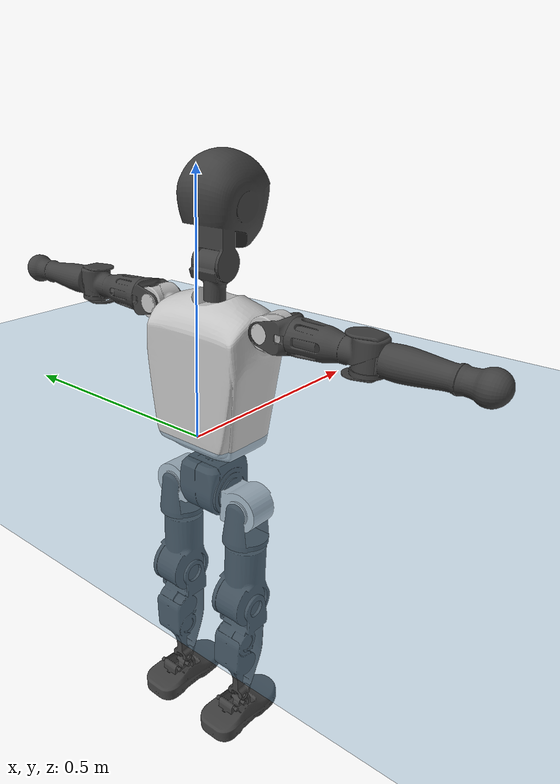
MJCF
<mujoco model="T1">
  <compiler angle="radian" assetdir="assets" balanceinertia="true" inertiafromgeom="false"/>

  <option timestep="0.005" density="1.2" viscosity="2e-05"/>

  <size nkey="1"/>

  <visual>
    <quality shadowsize="8192"/>
    <map shadowclip="0.5"/>
  </visual>

  <default>
    <default class="/">
      <joint armature="0.01" damping="0.01" frictionloss="0.1"/>
      <geom contype="0" conaffinity="0" group="1" solref="-1000 -80"/>
      <site size="0.01 0.005 0.005" group="5"/>
      <general forcelimited="true" biastype="affine" gainprm="25" biasprm="0 -25 -0.6"/>
      <default class="t1">
        <geom rgba="0.25 0.25 0.25 1"/>
        <default class="visual">
          <geom type="mesh" group="2"/>
        </default>
        <default class="collision">
          <geom group="3"/>
        </default>
        <default class="foot">
          <geom size="0.1115 0.05 0.015" type="box" condim="6" group="4" priority="1" solimp="0.015 1 0.015"/>
        </default>
        <default class="reward_collision_sphere">
          <geom group="5" rgba="1 0 0 1"/>
        </default>
      </default>
    </default>
  </default>

  <asset>
    <texture type="skybox" colorspace="auto" name="//unnamed_texture_0" builtin="gradient" rgb1="0.95 0.95 0.95" rgb2="0.95 0.95 0.95" width="100" height="600"/>
    <texture type="2d" colorspace="auto" name="texplane" builtin="checker" rgb1="0.345 0.575 0.748" rgb2="0.345 0.575 0.748" markrgb="1 1 1" width="512" height="512"/>
    <material name="MatPlane" class="/" texture="texplane" texuniform="true" texrepeat="2 2" specular="0.9"/>
    <mesh name="Trunk" class="/" file="Trunk.stl"/>
    <mesh name="H1" class="/" file="H1.stl"/>
    <mesh name="H2" class="/" file="H2.stl"/>
    <mesh name="AL1" class="/" file="AL1.stl"/>
    <mesh name="AL2" class="/" file="AL2.stl"/>
    <mesh name="AL3" class="/" file="AL3.stl"/>
    <mesh name="left_hand_link" class="/" file="left_hand_link.stl"/>
    <mesh name="AR1" class="/" file="AR1.stl"/>
    <mesh name="AR2" class="/" file="AR2.stl"/>
    <mesh name="AR3" class="/" file="AR3.stl"/>
    <mesh name="right_hand_link" class="/" file="right_hand_link.stl"/>
    <mesh name="Waist" class="/" file="Waist.stl"/>
    <mesh name="Hip_Pitch_Left" class="/" file="Hip_Pitch_Left.stl"/>
    <mesh name="Hip_Roll_Left" class="/" file="Hip_Roll_Left.stl"/>
    <mesh name="Hip_Yaw_Left" class="/" file="Hip_Yaw_Left.stl"/>
    <mesh name="Shank_Left" class="/" file="Shank_Left.stl"/>
    <mesh name="Ankle_Cross_Left" class="/" file="Ankle_Cross_Left.stl"/>
    <mesh name="left_foot_link" class="/" file="left_foot_link.stl"/>
    <mesh name="Hip_Pitch_Right" class="/" file="Hip_Pitch_Right.stl"/>
    <mesh name="Hip_Roll_Right" class="/" file="Hip_Roll_Right.stl"/>
    <mesh name="Hip_Yaw_Right" class="/" file="Hip_Yaw_Right.stl"/>
    <mesh name="Shank_Right" class="/" file="Shank_Right.stl"/>
    <mesh name="Ankle_Cross_Right" class="/" file="Ankle_Cross_Right.stl"/>
    <mesh name="right_foot_link" class="/" file="right_foot_link.stl"/>
  </asset>

  <worldbody>
    <geom name="floor" class="/" size="100 100 0.125" type="plane" group="0" material="MatPlane"/>
    <light name="toplight_shadow" class="/" pos="0 0 5" dir="0.0990148 0.0990148 -0.990148" type="directional" ambient="0.04 0.04 0.04" diffuse="0.55 0.55 0.55" specular="0.12 0.12 0.12"/>
    <light name="toplight_fill" class="/" pos="0 0 5" dir="0.0990148 0.0990148 -0.990148" type="directional" castshadow="false" ambient="0.04 0.04 0.04" diffuse="0.3 0.3 0.3" specular="0.08 0.08 0.08"/>
    <body name="trunk" childclass="t1" pos="0.000305279 -6.89025e-06 -0.000397477" quat="1 6.46686e-05 -1.37423e-05 -3.88072e-05">
      <inertial pos="0.0427362 -0.000448821 0.114601" quat="0.999938 0.00368339 -0.0104711 -0.000810187" mass="9.24919" diaginertia="0.0279938 0.0423288 0.0861695"/>
      <joint name="//unnamed_joint_0" type="free" armature="0" damping="0" frictionloss="0"/>
      <geom name="//unnamed_geom_1" class="visual" rgba="0.76 0.76 0.76 1" mesh="Trunk"/>
      <geom name="//unnamed_geom_2" class="collision" size="0.0691559 0.0922079 0.138312" pos="0.0472069 0 0.131022" type="box"/>
      <geom name="//unnamed_geom_3" class="reward_collision_sphere" size="0.106039" pos="0.0472069 0 0.109185"/>
      <geom name="//unnamed_geom_4" class="reward_collision_sphere" size="0.0138312" pos="0.0472069 0.0754464 0"/>
      <geom name="//unnamed_geom_5" class="reward_collision_sphere" size="0.0138312" pos="0.0472069 -0.0754464 0"/>
      <geom name="//unnamed_geom_6" class="reward_collision_sphere" size="0.0138312" pos="0.0472069 0.0949737 0.196533"/>
      <geom name="//unnamed_geom_7" class="reward_collision_sphere" size="0.0138312" pos="0.0472069 -0.0949737 0.196533"/>
      <site name="imu" pos="0.004423 -0.000526554 -0.0027166" size="0.00922079"/>
      <camera name="track" pos="0 -1.77521 0" quat="0.707107 0.707107 0 0" mode="trackcom"/>
      <camera name="ego_camera" pos="0.0959874 0 0.458577" quat="-0.5 -0.5 0.5 0.5"/>
      <body name="H1" pos="0.0494883 0.000629909 0.26516" quat="1 3.63885e-05 -0.000477008 -0.000100585">
        <inertial pos="-0.00142624 -0.00190073 0.0621606" quat="0.763848 -0.0132484 0.00220495 0.645256" mass="0.352302" diaginertia="7.31062e-05 0.000123361 0.000233909"/>
        <joint name="AAHead_yaw" pos="0 0 0" axis="-0.00010183 -0.000628633 1" range="-1.58008 1.55431" armature="0.00937258" damping="0.010532" frictionloss="0.0911717"/>
        <geom name="//unnamed_geom_8" class="visual" mesh="H1"/>
        <body name="H2" pos="-0.000354326 -0.000615705 0.067519" quat="1 -9.77565e-06 2.91755e-05 -8.53772e-06">
          <inertial pos="0.0062413 0.00112078 0.106849" quat="0.988471 0.106617 -0.0738594 -0.0781177" mass="0.498164" diaginertia="0.000608849 0.00105718 0.00265174"/>
          <joint name="Head_pitch" pos="0 0 0" axis="0.0018243 -0.999998 -0.000130816" range="-1.21979 0.334858" armature="0.00917798" damping="0.00935697" frictionloss="0.0926229"/>
          <geom name="//unnamed_geom_9" class="visual" mesh="H2"/>
          <geom name="//unnamed_geom_10" class="collision" size="0.0737663" pos="0.00786782 0 0.120103"/>
          <geom name="//unnamed_geom_11" class="reward_collision_sphere" size="0.0829871" pos="0.0157356 0 0.109185"/>
        </body>
      </body>
      <body name="AL1" pos="0.0468204 0.0948248 0.239939" quat="1 0.000110378 0.00038764 -1.83154e-05">
        <inertial pos="-0.0014303 0.0389238 0.000353" quat="0.502863 0.495016 -0.502689 0.499391" mass="0.414087" diaginertia="0.000410426 0.000713191 0.00045163"/>
        <joint name="Left_Shoulder_Pitch" pos="0 0 0" axis="2.68065e-06 1 3.86595e-07" range="-3.31165 1.23745" armature="0.00945047" damping="0.00825996" frictionloss="0.0928485"/>
        <geom name="//unnamed_geom_12" class="visual" rgba="0.76 0.76 0.76 1" mesh="AL1"/>
        <body name="AL2" pos="0.000690614 0.0430484 0.00042878" quat="1 0.000282164 0.00010116 0.000503578">
          <inertial pos="0.00203987 0.0338259 0.000279542" quat="0.486183 0.511954 -0.488616 0.512625" mass="0.127855" diaginertia="0.000121799 0.000190329 0.000273911"/>
          <joint name="Left_Shoulder_Roll" pos="0 0 0" axis="-0.999996 0.00292858 0.000219788" range="-1.55548 1.73706" armature="0.00884785" damping="0.0055708" frictionloss="0.0935088"/>
          <geom name="//unnamed_geom_13" class="visual" mesh="AL2"/>
          <body name="AL3" pos="-0.000381303 0.0544521 0.000244825" quat="1 -2.96192e-05 0.000246175 0.000312296">
            <inertial pos="1.12587e-05 0.0755575 -0.0001479" quat="0.706222 0.707989 -0.00117903 0.000154489" mass="0.80363" diaginertia="0.00391035 0.00705891 0.000978098"/>
            <joint name="Left_Elbow_Pitch" pos="0 0 0" axis="-0.000545411 -1 -0.000158474" range="-2.25804 2.26868" armature="0.00907239" damping="0.00971953" frictionloss="0.0924385"/>
            <geom name="//unnamed_geom_14" class="visual" mesh="AL3"/>
            <geom name="//unnamed_geom_15" class="collision" size="0.0276624 0.0691559" pos="0 0.0443803 0" quat="0.707105 0.707108 0 0" type="cylinder"/>
            <geom name="//unnamed_geom_16" class="reward_collision_sphere" size="0.0331948"/>
            <body name="left_hand_link" pos="0.000622468 0.131814 -0.000109215" quat="1 -7.21885e-05 -0.000200871 3.58677e-05">
              <inertial pos="6.02524e-05 0.0979746 0.000203534" quat="0.707462 0.706751 0.000382095 0.00015923" mass="0.25262" diaginertia="0.00240073 0.00440825 0.000332317"/>
              <joint name="Left_Elbow_Yaw" pos="0 0 0" axis="0.000392139 -0.00338568 0.999994" range="-2.44579 -0.00728136" armature="0.00924434" damping="0.0145677" frictionloss="0.0962361"/>
              <geom name="//unnamed_geom_17" class="visual" mesh="left_hand_link"/>
              <geom name="//unnamed_geom_18" class="collision" size="0.0276624 0.0806819" pos="0 0.115389 0" quat="0.707105 0.707108 0 0" type="cylinder"/>
              <geom name="//unnamed_geom_19" class="reward_collision_sphere" size="0.0461039"/>
              <geom name="//unnamed_geom_20" class="reward_collision_sphere" size="0.0322728" pos="0 0.0976366 0"/>
              <geom name="//unnamed_geom_21" class="reward_collision_sphere" size="0.0322728" pos="0 0.190835 0"/>
            </body>
          </body>
        </body>
      </body>
      <body name="AR1" pos="0.0447274 -0.0940085 0.238836" quat="1 -0.000221668 0.000566353 -8.67687e-05">
        <inertial pos="-0.000971304 -0.0405168 0.000319003" quat="0.50344 0.496142 -0.504909 0.495437" mass="0.411071" diaginertia="0.000410256 0.000708696 0.000455176"/>
        <joint name="Right_Shoulder_Pitch" pos="0 0 0" axis="0.00460063 -0.999975 0.00536407" stiffness="0.00294828" range="-1.21516 3.30053" armature="0.00933115" damping="0.00694722" frictionloss="0.0928825"/>
        <geom name="//unnamed_geom_22" class="visual" rgba="0.76 0.76 0.76 1" mesh="AR1"/>
        <body name="AR2" pos="-0.000974772 -0.041196 -0.000421983" quat="1 -0.000121861 -1.27618e-05 0.000283954">
          <inertial pos="0.00385972 -0.0341642 0.00113924" quat="0.511822 0.491171 -0.511611 0.484812" mass="0.125408" diaginertia="0.000119876 0.000186924 0.000271798"/>
          <joint name="Right_Shoulder_Roll" pos="0 0 0" axis="-0.999969 0.000897163 0.00781795" range="-1.75675 1.56208" armature="0.0091956" damping="0.00712496" frictionloss="0.0908625"/>
          <geom name="//unnamed_geom_23" class="visual" mesh="AR2"/>
          <body name="AR3" pos="0.000591835 -0.0530283 -0.000292607" quat="1 -9.79789e-07 1.94333e-06 2.06108e-07">
            <inertial pos="-0.000288674 -0.0761513 0.000415964" quat="0.711141 0.703043 -0.000719618 0.00267328" mass="0.807064" diaginertia="0.00391647 0.00696704 0.000957836"/>
            <joint name="Right_Elbow_Pitch" pos="0 0 0" axis="-0.000237053 1 0.000421568" range="-2.27108 2.26606" armature="0.00898864" damping="0.00503685" frictionloss="0.0947856"/>
            <geom name="//unnamed_geom_24" class="visual" mesh="AR3"/>
            <geom name="//unnamed_geom_25" class="collision" size="0.0276624 0.0691559" pos="0 -0.0443803 0" quat="0.707105 0.707108 0 0" type="cylinder"/>
            <geom name="//unnamed_geom_26" class="reward_collision_sphere" size="0.0331948"/>
            <body name="right_hand_link" pos="-0.000699308 -0.130981 -0.000407248" quat="1 -0.000192578 -0.00031314 -0.000148071">
              <inertial pos="5.26451e-05 -0.0971283 0.00133996" quat="0.706845 0.707368 -0.000640494 4.2106e-05" mass="0.255706" diaginertia="0.00246307 0.00444018 0.00033066"/>
              <joint name="Right_Elbow_Yaw" pos="0 0 0" axis="0.00260762 0.00332677 0.999991" range="0.00522197 2.44662" armature="0.00963138" damping="0.00834997" frictionloss="0.0920662"/>
              <geom name="//unnamed_geom_27" class="visual" mesh="right_hand_link"/>
              <geom name="//unnamed_geom_28" class="collision" size="0.0276624 0.0806819" pos="0 -0.115389 0" quat="0.707105 0.707108 0 0" type="cylinder"/>
              <geom name="//unnamed_geom_29" class="reward_collision_sphere" size="0.0461039"/>
              <geom name="//unnamed_geom_30" class="reward_collision_sphere" size="0.0322728" pos="0 -0.0976366 0"/>
              <geom name="//unnamed_geom_31" class="reward_collision_sphere" size="0.0322728" pos="0 -0.190835 0"/>
            </body>
          </body>
        </body>
      </body>
      <body name="Waist" pos="0.0493501 -0.00156476 -0.125519" quat="1 -1.26962e-06 0.000100893 -0.000116539">
        <inertial pos="0.00213514 -0.000867638 0.00787143" quat="0.983344 0.000231748 -0.181755 -0.000269731" mass="2.0123" diaginertia="0.00162471 0.00291462 0.00743791"/>
        <joint name="Waist" pos="0 0 0" axis="-0.000267736 0.000150991 1" range="-1.55219 1.55827" armature="0.00924463" damping="0.0123166" frictionloss="0.0917021"/>
        <geom name="//unnamed_geom_32" class="visual" mesh="Waist"/>
        <body name="Hip_Pitch_Left" pos="8.80559e-05 0.0936805 0.000185659" quat="1 3.08741e-05 -5.1104e-05 8.48607e-05">
          <inertial pos="0.00131325 -0.00601199 -0.0197434" quat="0.975003 0.22171 0.0143863 0.0025198" mass="0.80418" diaginertia="0.000550474 0.000823631 0.00197011"/>
          <joint name="Left_Hip_Pitch" pos="0 0 0" axis="0.0013993 0.999996 -0.00261235" range="-1.80569 1.55472" armature="0.00921607" damping="0.00607254" frictionloss="0.0921273"/>
          <geom name="//unnamed_geom_33" class="visual" rgba="0.76 0.76 0.76 1" mesh="Hip_Pitch_Left"/>
          <body name="Hip_Roll_Left" pos="-0.000350601 -0.000276266 -0.0211771" quat="1 -0.000158606 9.26358e-06 -8.14923e-05">
            <inertial pos="0.000654734 -0.000195221 -0.0586331" quat="0.707025 -0.00596894 -0.00614082 0.707137" mass="0.301298" diaginertia="0.000526251 0.000832707 0.000797276"/>
            <joint name="Left_Hip_Roll" pos="0 0 0" axis="-1 -0.000214397 0.000203697" range="-1.56527 0.200709" armature="0.00917828" damping="0.0102057" frictionloss="0.0904201"/>
            <geom name="//unnamed_geom_34" class="visual" mesh="Hip_Roll_Left"/>
            <geom name="//unnamed_geom_35" class="reward_collision_sphere" size="0.0507143"/>
            <body name="Hip_Yaw_Left" pos="0.00105618 -0.000739054 -0.0895181" quat="1 6.26876e-05 -0.00038076 0.000105662">
              <inertial pos="-0.00588477 -0.00067529 -0.0972683" quat="0.698119 -0.0332198 -0.0278066 0.71467" mass="1.71611" diaginertia="0.0077999 0.0137812 0.00398029"/>
              <joint name="Left_Hip_Yaw" pos="0 0 0" axis="1.19391e-05 0.00223217 -0.999998" range="-1.00539 1.01567" armature="0.00919821" damping="0.0103772" frictionloss="0.0921962"/>
              <geom name="//unnamed_geom_36" class="visual" mesh="Hip_Yaw_Left"/>
              <geom name="//unnamed_geom_37" class="collision" size="0.0461039 0.0737663" type="cylinder"/>
              <body name="Shank_Left" pos="-0.0107512 -0.000115216 -0.146008" quat="1 0.000351193 0.00024525 4.92988e-05">
                <inertial pos="-0.00451175 0.00011656 -0.136181" quat="0.997713 0.000607218 -0.0237633 0.0632694" mass="1.34195" diaginertia="0.0105212 0.0187206 0.00287201"/>
                <joint name="Left_Knee_Pitch" pos="0 0 0" axis="0.000108612 0.999992 0.00400521" range="-0.00846623 2.33755" armature="0.00929628" damping="0.008181" frictionloss="0.0919953"/>
                <geom name="//unnamed_geom_38" class="visual" mesh="Shank_Left"/>
                <geom name="//unnamed_geom_39" class="collision" size="0.0461039 0.0691559" pos="0 0 -0.131022" type="cylinder"/>
                <geom name="//unnamed_geom_40" class="reward_collision_sphere" size="0.0599351"/>
                <body name="Ankle_Cross_Left" pos="0.000431263 -0.000166491 -0.305557" quat="1 -8.5996e-06 -0.000423572 0.000266044">
                  <inertial pos="-0.00311586 -0.000684985 -0.00971222" quat="0.442135 0.552123 0.550574 0.443334" mass="0.0577156" diaginertia="8.77037e-06 1.43131e-05 1.78447e-05"/>
                  <joint name="Left_Ankle_Pitch" pos="0 0 0" axis="0.00209265 0.999992 0.00331787" range="-0.89163 0.331057" armature="0.00962363" damping="0.0053167" frictionloss="0.0925407"/>
                  <geom name="//unnamed_geom_41" class="visual" mesh="Ankle_Cross_Left"/>
                  <body name="left_foot_link" pos="-0.000805734 -0.000211086 -0.0141134" quat="1 -6.22248e-05 -1.02329e-06 4.05283e-05">
                    <inertial pos="1.99222e-05 -0.000271279 -0.00951954" quat="-0.0003119 0.621215 -0.000882697 0.78364" mass="0.543082" diaginertia="0.000806514 0.00131432 0.00339536"/>
                    <joint name="Left_Ankle_Roll" pos="0 0 0" axis="-1 -0.000143894 -0.000280194" stiffness="0.000669022" range="-0.425376 0.450588" armature="0.00923342" damping="0.0124263" frictionloss="0.0931748"/>
                    <geom name="//unnamed_geom_42" class="visual" mesh="left_foot_link"/>
                    <geom name="left_foot" class="foot" size="0.0997159 0.0483003 0.0135758" pos="0.00786782 0 -0.0163777"/>
                    <geom name="//unnamed_geom_44" class="reward_collision_sphere" size="0.0479481" pos="0.00786782 0 -0.0163777"/>
                    <geom name="//unnamed_geom_45" class="reward_collision_sphere" size="0.0276624" pos="0.0747443 -0.0204149 -0.0163777"/>
                    <geom name="//unnamed_geom_46" class="reward_collision_sphere" size="0.0276624" pos="-0.0550747 -0.0204149 -0.0163777"/>
                    <site name="left_foot" class="foot" pos="0.00786782 0 -0.0163777" size="0.00922079"/>
                  </body>
                </body>
              </body>
            </body>
          </body>
        </body>
        <body name="Hip_Pitch_Right" pos="-0.000985684 -0.0943782 -0.00013728" quat="1 0.000108131 8.35648e-05 -0.000127892">
          <inertial pos="0.000441624 0.00661346 -0.0189815" quat="0.97347 -0.228315 0.0145854 -0.00404863" mass="0.801979" diaginertia="0.000545224 0.000808129 0.00193222"/>
          <joint name="Right_Hip_Pitch" pos="0 0 0" axis="-0.000779088 -0.999993 0.00354727" range="-1.57499 1.8055" armature="0.00914251" damping="0.00744457" frictionloss="0.0880858"/>
          <geom name="//unnamed_geom_47" class="visual" rgba="0.76 0.76 0.76 1" mesh="Hip_Pitch_Right"/>
          <body name="Hip_Roll_Right" pos="-0.000437383 0.000722653 -0.0225747" quat="1 -0.000263634 -0.000322809 0.000523464">
            <inertial pos="0.00209949 -0.000217702 -0.0578209" quat="0.7064 -0.00704457 -0.00712332 0.707742" mass="0.303895" diaginertia="0.000534163 0.000844818 0.000804241"/>
            <joint name="Right_Hip_Roll" pos="0 0 0" axis="-0.999998 -0.00147642 -0.000993604" range="-0.205189 1.56232" armature="0.00923162" damping="0.00957253" frictionloss="0.091895"/>
            <geom name="//unnamed_geom_48" class="visual" mesh="Hip_Roll_Right"/>
            <geom name="//unnamed_geom_49" class="reward_collision_sphere" size="0.0507143"/>
            <body name="Hip_Yaw_Right" pos="0.000138225 0.000516529 -0.089508" quat="1 -0.000270018 0.000194125 -9.3076e-05">
              <inertial pos="-0.00631499 -0.000837953 -0.0976094" quat="0.711661 -0.0319957 -0.0342432 0.700958" mass="1.69619" diaginertia="0.00781009 0.0141697 0.00399114"/>
              <joint name="Right_Hip_Yaw" pos="0 0 0" axis="0.00011265 0.000433092 -1" range="-0.999678 0.985688" armature="0.00930118" damping="0.00686883" frictionloss="0.0908136"/>
              <geom name="//unnamed_geom_50" class="visual" mesh="Hip_Yaw_Right"/>
              <geom name="//unnamed_geom_51" class="collision" size="0.0461039 0.0737663" type="cylinder"/>
              <body name="Shank_Right" pos="-0.0109912 -0.00121507 -0.145928" quat="1 2.83256e-05 -5.21224e-05 -5.04635e-05">
                <inertial pos="-0.00483188 -0.000976188 -0.134494" quat="0.999262 -0.000808984 -0.0237859 -0.030161" mass="1.4109" diaginertia="0.0105677 0.0191357 0.0030509"/>
                <joint name="Right_Knee_Pitch" pos="0 0 0" axis="0.00287691 -0.999983 0.00500274" range="-2.34484 -0.0105237" armature="0.0092028" damping="0.00318259" frictionloss="0.0890897"/>
                <geom name="//unnamed_geom_52" class="visual" mesh="Shank_Right"/>
                <geom name="//unnamed_geom_53" class="collision" size="0.0461039 0.0691559" pos="0 0 -0.131022" type="cylinder"/>
                <geom name="//unnamed_geom_54" class="reward_collision_sphere" size="0.0599351"/>
                <body name="Ankle_Cross_Right" pos="0.000974596 -0.000411729 -0.305227" quat="1 2.04548e-05 -6.36025e-05 -5.37455e-06">
                  <inertial pos="-0.00290524 0.000514146 -0.00869342" quat="0.44148 0.552889 0.55195 0.441316" mass="0.0576237" diaginertia="8.81273e-06 1.42769e-05 1.76779e-05"/>
                  <joint name="Right_Ankle_Pitch" pos="0 0 0" axis="0.00436393 -0.999981 -0.00433246" range="-0.347468 0.882747" armature="0.00905219" damping="0.00986445" frictionloss="0.0878216"/>
                  <geom name="//unnamed_geom_55" class="visual" mesh="Ankle_Cross_Right"/>
                  <body name="right_foot_link" pos="3.9189e-05 -0.000383674 -0.0139897" quat="1 0.000372392 -0.000138356 -0.000233398">
                    <inertial pos="0.000197775 0.000433654 -0.00989715" quat="-0.000399214 0.62236 0.000635344 0.782731" mass="0.532478" diaginertia="0.000815783 0.00130929 0.00340342"/>
                    <joint name="Right_Ankle_Roll" pos="0 0 0" axis="-1 3.7533e-05 0.000182529" range="-0.419096 0.423178" armature="0.00949222" damping="0.00786751" frictionloss="0.0922583"/>
                    <geom name="//unnamed_geom_56" class="visual" mesh="right_foot_link"/>
                    <geom name="right_foot" class="foot" size="0.0937734 0.0463056 0.0137192" pos="0.00786782 0 -0.0163777"/>
                    <geom name="//unnamed_geom_58" class="reward_collision_sphere" size="0.0368831"/>
                    <geom name="//unnamed_geom_59" class="reward_collision_sphere" size="0.0276624" pos="0.00786782 0 -0.0163777"/>
                    <geom name="//unnamed_geom_60" class="reward_collision_sphere" size="0.0276624" pos="0.0747443 0.0204149 -0.0163777"/>
                    <geom name="//unnamed_geom_61" class="reward_collision_sphere" size="0.0276624" pos="-0.0550747 0.0204149 -0.0163777"/>
                    <site name="right_foot" class="foot" pos="0.00786782 0 -0.0163777" size="0.00922079"/>
                  </body>
                </body>
              </body>
            </body>
          </body>
        </body>
      </body>
    </body>
  </worldbody>

  <contact>
    <pair class="/" geom1="floor" geom2="left_foot" name="//unnamed_contact_0"/>
    <pair class="/" geom1="floor" geom2="right_foot" name="//unnamed_contact_1"/>
  </contact>

  <actuator>
    <general name="AAHead_yaw" class="/" joint="AAHead_yaw" forcerange="-6.65121 6.65121" gainprm="22.6841" biasprm="0 -22.6841 -0.528933"/>
    <general name="Head_pitch" class="/" joint="Head_pitch" forcerange="-6.53207 6.53207" gainprm="22.6841" biasprm="0 -22.6841 -0.528933"/>
    <general name="Left_Shoulder_Pitch" class="/" joint="Left_Shoulder_Pitch" forcerange="-16.5244 16.5244" gainprm="22.6841" biasprm="0 -22.6841 -0.528933"/>
    <general name="Left_Shoulder_Roll" class="/" joint="Left_Shoulder_Roll" forcerange="-16.4623 16.4623" gainprm="22.6841" biasprm="0 -22.6841 -0.528933"/>
    <general name="Left_Elbow_Pitch" class="/" joint="Left_Elbow_Pitch" forcerange="-16.5532 16.5532" gainprm="22.6841" biasprm="0 -22.6841 -0.528933"/>
    <general name="Left_Elbow_Yaw" class="/" joint="Left_Elbow_Yaw" forcerange="-16.3996 16.3996" gainprm="22.6841" biasprm="0 -22.6841 -0.528933"/>
    <general name="Right_Shoulder_Pitch" class="/" joint="Right_Shoulder_Pitch" forcerange="-16.6471 16.6471" gainprm="22.6841" biasprm="0 -22.6841 -0.528933"/>
    <general name="Right_Shoulder_Roll" class="/" joint="Right_Shoulder_Roll" forcerange="-16.5492 16.5492" gainprm="22.6841" biasprm="0 -22.6841 -0.528933"/>
    <general name="Right_Elbow_Pitch" class="/" joint="Right_Elbow_Pitch" forcerange="-16.5685 16.5685" gainprm="22.6841" biasprm="0 -22.6841 -0.528933"/>
    <general name="Right_Elbow_Yaw" class="/" joint="Right_Elbow_Yaw" forcerange="-16.4863 16.4863" gainprm="22.6841" biasprm="0 -22.6841 -0.528933"/>
    <general name="Waist" class="/" joint="Waist" forcerange="-26.9629 26.9629" gainprm="22.6841" biasprm="0 -22.6841 -0.528933"/>
    <general name="Left_Hip_Pitch" class="/" joint="Left_Hip_Pitch" forcerange="-39.8876 39.8876" gainprm="22.6841" biasprm="0 -22.6841 -0.528933"/>
    <general name="Left_Hip_Roll" class="/" joint="Left_Hip_Roll" forcerange="-28.149 28.149" gainprm="22.6841" biasprm="0 -22.6841 -0.528933"/>
    <general name="Left_Hip_Yaw" class="/" joint="Left_Hip_Yaw" forcerange="-27.553 27.553" gainprm="22.6841" biasprm="0 -22.6841 -0.528933"/>
    <general name="Left_Knee_Pitch" class="/" joint="Left_Knee_Pitch" forcerange="-54.8945 54.8945" gainprm="22.6841" biasprm="0 -22.6841 -0.528933"/>
    <general name="Left_Ankle_Pitch" class="/" joint="Left_Ankle_Pitch" forcerange="-18.7859 18.7859" gainprm="22.6841" biasprm="0 -22.6841 -0.528933"/>
    <general name="Left_Ankle_Roll" class="/" joint="Left_Ankle_Roll" forcerange="-13.9097 13.9097" gainprm="22.6841" biasprm="0 -22.6841 -0.528933"/>
    <general name="Right_Hip_Pitch" class="/" joint="Right_Hip_Pitch" forcerange="-42.4137 42.4137" gainprm="22.6841" biasprm="0 -22.6841 -0.528933"/>
    <general name="Right_Hip_Roll" class="/" joint="Right_Hip_Roll" forcerange="-28.0678 28.0678" gainprm="22.6841" biasprm="0 -22.6841 -0.528933"/>
    <general name="Right_Hip_Yaw" class="/" joint="Right_Hip_Yaw" forcerange="-27.589 27.589" gainprm="22.6841" biasprm="0 -22.6841 -0.528933"/>
    <general name="Right_Knee_Pitch" class="/" joint="Right_Knee_Pitch" forcerange="-53.2654 53.2654" gainprm="22.6841" biasprm="0 -22.6841 -0.528933"/>
    <general name="Right_Ankle_Pitch" class="/" joint="Right_Ankle_Pitch" forcerange="-18.9499 18.9499" gainprm="22.6841" biasprm="0 -22.6841 -0.528933"/>
    <general name="Right_Ankle_Roll" class="/" joint="Right_Ankle_Roll" forcerange="-13.5392 13.5392" gainprm="22.6841" biasprm="0 -22.6841 -0.528933"/>
  </actuator>

  <sensor>
    <gyro site="imu" name="imu_angular_velocity"/>
    <velocimeter site="imu" name="imu_linear_velocity"/>
    <framelinvel objtype="site" objname="left_foot" name="left_foot_global_linear_velocity"/>
    <framelinvel objtype="site" objname="right_foot" name="right_foot_global_linear_velocity"/>
  </sensor>

  <keyframe>
    <key name="home" qpos="0 0 0.6385 1 0 0 0 0 0 0 1.4 0 -0.4 0 -1.4 0 0.4 0 -0.4 0 0 0.8 -0.4 0 0.4 0 0 -0.8 0.4 0"/>
  </keyframe>
</mujoco>
